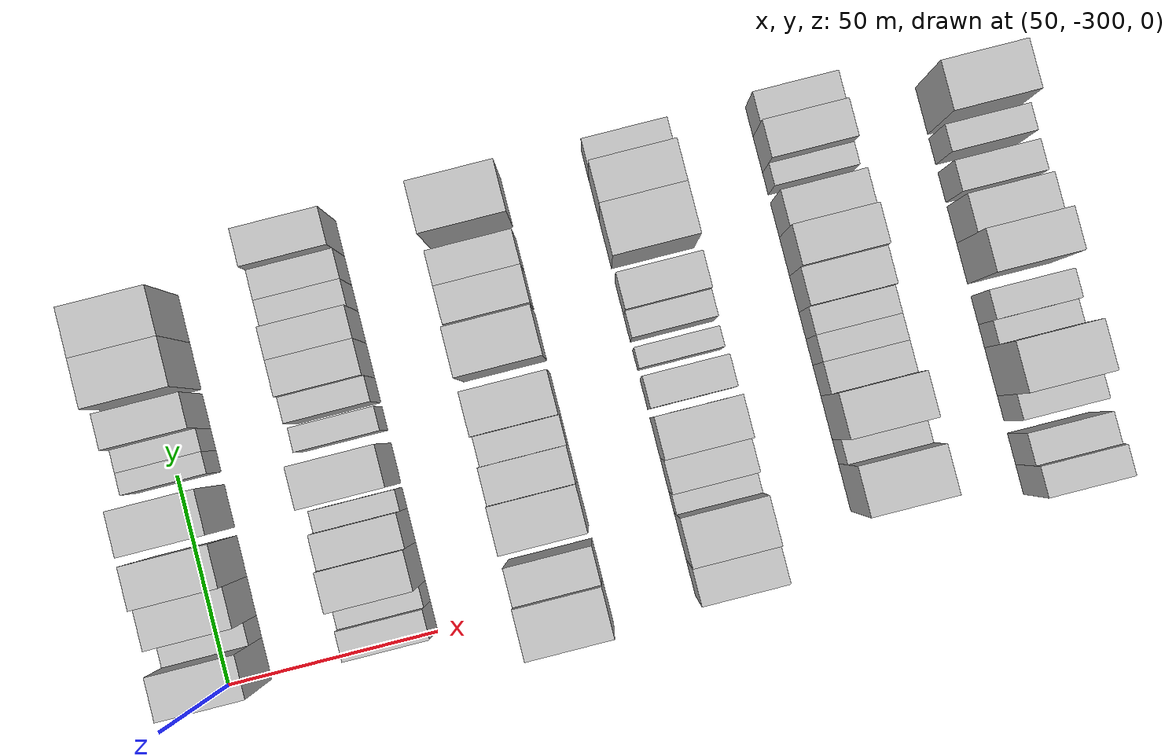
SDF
<sdf version="1.6">
 <world name="default">
  <model name="building_34">
   <static>1</static>
   <pose>50.0000 -296.2287 0 0.000000 0.000000 0.000000</pose>
   <link name="link">
    <pose>0 0 12.00 0 0 0</pose>
    <collision name="collision"><geometry><box><size>20.0000 9.9216 24.0000</size></box></geometry></collision>
    <visual name="visual">
     <cast_shadows>0</cast_shadows>
     <geometry><box><size>20.0000 9.9216 24.0000</size></box></geometry>
     <material>
      <script>
       <uri>model://HANNAS_wall/materials/scripts</uri>
       <uri>model://HANNAS_wall/materials/textures</uri>
       <name>vrc/HANNAS_wall</name>
      </script>
     </material>
    </visual>
   </link>
  </model>
  <model name="building_35">
   <static>1</static>
   <pose>50.0000 -288.6441 0 0.000000 0.000000 0.000000</pose>
   <link name="link">
    <pose>0 0 6.00 0 0 0</pose>
    <collision name="collision"><geometry><box><size>20.0000 5.2477 12.0000</size></box></geometry></collision>
    <visual name="visual">
     <cast_shadows>0</cast_shadows>
     <geometry><box><size>20.0000 5.2477 12.0000</size></box></geometry>
     <material>
      <script>
       <uri>model://HANNAS_wall/materials/scripts</uri>
       <uri>model://HANNAS_wall/materials/textures</uri>
       <name>vrc/HANNAS_wall</name>
      </script>
     </material>
    </visual>
   </link>
  </model>
  <model name="building_36">
   <static>1</static>
   <pose>50.0000 -281.3469 0 0.000000 0.000000 0.000000</pose>
   <link name="link">
    <pose>0 0 10.50 0 0 0</pose>
    <collision name="collision"><geometry><box><size>20.0000 9.3467 21.0000</size></box></geometry></collision>
    <visual name="visual">
     <cast_shadows>0</cast_shadows>
     <geometry><box><size>20.0000 9.3467 21.0000</size></box></geometry>
     <material>
      <script>
       <uri>model://HANNAS_wall/materials/scripts</uri>
       <uri>model://HANNAS_wall/materials/textures</uri>
       <name>vrc/HANNAS_wall</name>
      </script>
     </material>
    </visual>
   </link>
  </model>
  <model name="building_37">
   <static>1</static>
   <pose>50.0000 -271.7772 0 0.000000 0.000000 0.000000</pose>
   <link name="link">
    <pose>0 0 12.00 0 0 0</pose>
    <collision name="collision"><geometry><box><size>20.0000 9.7928 24.0000</size></box></geometry></collision>
    <visual name="visual">
     <cast_shadows>0</cast_shadows>
     <geometry><box><size>20.0000 9.7928 24.0000</size></box></geometry>
     <material>
      <script>
       <uri>model://HANNAS_wall/materials/scripts</uri>
       <uri>model://HANNAS_wall/materials/textures</uri>
       <name>vrc/HANNAS_wall</name>
      </script>
     </material>
    </visual>
   </link>
  </model>
  <model name="building_38">
   <static>1</static>
   <pose>50.0000 -259.7504 0 0.000000 0.000000 0.000000</pose>
   <link name="link">
    <pose>0 0 12.00 0 0 0</pose>
    <collision name="collision"><geometry><box><size>20.0000 10.2608 24.0000</size></box></geometry></collision>
    <visual name="visual">
     <cast_shadows>0</cast_shadows>
     <geometry><box><size>20.0000 10.2608 24.0000</size></box></geometry>
     <material>
      <script>
       <uri>model://HANNAS_wall/materials/scripts</uri>
       <uri>model://HANNAS_wall/materials/textures</uri>
       <name>vrc/HANNAS_wall</name>
      </script>
     </material>
    </visual>
   </link>
  </model>
  <model name="building_39">
   <static>1</static>
   <pose>50.0000 -249.0538 0 0.000000 0.000000 0.000000</pose>
   <link name="link">
    <pose>0 0 6.00 0 0 0</pose>
    <collision name="collision"><geometry><box><size>20.0000 5.1324 12.0000</size></box></geometry></collision>
    <visual name="visual">
     <cast_shadows>0</cast_shadows>
     <geometry><box><size>20.0000 5.1324 12.0000</size></box></geometry>
     <material>
      <script>
       <uri>model://HANNAS_wall/materials/scripts</uri>
       <uri>model://HANNAS_wall/materials/textures</uri>
       <name>vrc/HANNAS_wall</name>
      </script>
     </material>
    </visual>
   </link>
  </model>
  <model name="building_40">
   <static>1</static>
   <pose>50.0000 -243.7974 0 0.000000 0.000000 0.000000</pose>
   <link name="link">
    <pose>0 0 6.00 0 0 0</pose>
    <collision name="collision"><geometry><box><size>20.0000 5.3804 12.0000</size></box></geometry></collision>
    <visual name="visual">
     <cast_shadows>0</cast_shadows>
     <geometry><box><size>20.0000 5.3804 12.0000</size></box></geometry>
     <material>
      <script>
       <uri>model://HANNAS_wall/materials/scripts</uri>
       <uri>model://HANNAS_wall/materials/textures</uri>
       <name>vrc/HANNAS_wall</name>
      </script>
     </material>
    </visual>
   </link>
  </model>
  <model name="building_41">
   <static>1</static>
   <pose>50.0000 -236.9577 0 0.000000 0.000000 0.000000</pose>
   <link name="link">
    <pose>0 0 9.00 0 0 0</pose>
    <collision name="collision"><geometry><box><size>20.0000 8.2990 18.0000</size></box></geometry></collision>
    <visual name="visual">
     <cast_shadows>0</cast_shadows>
     <geometry><box><size>20.0000 8.2990 18.0000</size></box></geometry>
     <material>
      <script>
       <uri>model://HANNAS_wall/materials/scripts</uri>
       <uri>model://HANNAS_wall/materials/textures</uri>
       <name>vrc/HANNAS_wall</name>
      </script>
     </material>
    </visual>
   </link>
  </model>
  <model name="building_42">
   <static>1</static>
   <pose>50.0000 -226.1209 0 0.000000 0.000000 0.000000</pose>
   <link name="link">
    <pose>0 0 12.00 0 0 0</pose>
    <collision name="collision"><geometry><box><size>20.0000 11.3746 24.0000</size></box></geometry></collision>
    <visual name="visual">
     <cast_shadows>0</cast_shadows>
     <geometry><box><size>20.0000 11.3746 24.0000</size></box></geometry>
     <material>
      <script>
       <uri>model://HANNAS_wall/materials/scripts</uri>
       <uri>model://HANNAS_wall/materials/textures</uri>
       <name>vrc/HANNAS_wall</name>
      </script>
     </material>
    </visual>
   </link>
  </model>
  <model name="building_43">
   <static>1</static>
   <pose>50.0000 -214.7128 0 0.000000 0.000000 0.000000</pose>
   <link name="link">
    <pose>0 0 12.00 0 0 0</pose>
    <collision name="collision"><geometry><box><size>20.0000 11.4416 24.0000</size></box></geometry></collision>
    <visual name="visual">
     <cast_shadows>0</cast_shadows>
     <geometry><box><size>20.0000 11.4416 24.0000</size></box></geometry>
     <material>
      <script>
       <uri>model://HANNAS_wall/materials/scripts</uri>
       <uri>model://HANNAS_wall/materials/textures</uri>
       <name>vrc/HANNAS_wall</name>
      </script>
     </material>
    </visual>
   </link>
  </model>
  <model name="building_172">
   <static>1</static>
   <pose>90.0000 -296.2111 0 0.000000 0.000000 0.000000</pose>
   <link name="link">
    <pose>0 0 7.50 0 0 0</pose>
    <collision name="collision"><geometry><box><size>20.0000 6.9369 15.0000</size></box></geometry></collision>
    <visual name="visual">
     <cast_shadows>0</cast_shadows>
     <geometry><box><size>20.0000 6.9369 15.0000</size></box></geometry>
     <material>
      <script>
       <uri>model://HANNAS_wall/materials/scripts</uri>
       <uri>model://HANNAS_wall/materials/textures</uri>
       <name>vrc/HANNAS_wall</name>
      </script>
     </material>
    </visual>
   </link>
  </model>
  <model name="building_173">
   <static>1</static>
   <pose>90.0000 -290.3276 0 0.000000 0.000000 0.000000</pose>
   <link name="link">
    <pose>0 0 6.00 0 0 0</pose>
    <collision name="collision"><geometry><box><size>20.0000 4.8303 12.0000</size></box></geometry></collision>
    <visual name="visual">
     <cast_shadows>0</cast_shadows>
     <geometry><box><size>20.0000 4.8303 12.0000</size></box></geometry>
     <material>
      <script>
       <uri>model://HANNAS_wall/materials/scripts</uri>
       <uri>model://HANNAS_wall/materials/textures</uri>
       <name>vrc/HANNAS_wall</name>
      </script>
     </material>
    </visual>
   </link>
  </model>
  <model name="building_174">
   <static>1</static>
   <pose>90.0000 -283.2886 0 0.000000 0.000000 0.000000</pose>
   <link name="link">
    <pose>0 0 10.50 0 0 0</pose>
    <collision name="collision"><geometry><box><size>20.0000 9.2477 21.0000</size></box></geometry></collision>
    <visual name="visual">
     <cast_shadows>0</cast_shadows>
     <geometry><box><size>20.0000 9.2477 21.0000</size></box></geometry>
     <material>
      <script>
       <uri>model://HANNAS_wall/materials/scripts</uri>
       <uri>model://HANNAS_wall/materials/textures</uri>
       <name>vrc/HANNAS_wall</name>
      </script>
     </material>
    </visual>
   </link>
  </model>
  <model name="building_175">
   <static>1</static>
   <pose>90.0000 -274.5964 0 0.000000 0.000000 0.000000</pose>
   <link name="link">
    <pose>0 0 9.00 0 0 0</pose>
    <collision name="collision"><geometry><box><size>20.0000 8.1366 18.0000</size></box></geometry></collision>
    <visual name="visual">
     <cast_shadows>0</cast_shadows>
     <geometry><box><size>20.0000 8.1366 18.0000</size></box></geometry>
     <material>
      <script>
       <uri>model://HANNAS_wall/materials/scripts</uri>
       <uri>model://HANNAS_wall/materials/textures</uri>
       <name>vrc/HANNAS_wall</name>
      </script>
     </material>
    </visual>
   </link>
  </model>
  <model name="building_176">
   <static>1</static>
   <pose>90.0000 -268.0155 0 0.000000 0.000000 0.000000</pose>
   <link name="link">
    <pose>0 0 6.00 0 0 0</pose>
    <collision name="collision"><geometry><box><size>20.0000 5.0253 12.0000</size></box></geometry></collision>
    <visual name="visual">
     <cast_shadows>0</cast_shadows>
     <geometry><box><size>20.0000 5.0253 12.0000</size></box></geometry>
     <material>
      <script>
       <uri>model://HANNAS_wall/materials/scripts</uri>
       <uri>model://HANNAS_wall/materials/textures</uri>
       <name>vrc/HANNAS_wall</name>
      </script>
     </material>
    </visual>
   </link>
  </model>
  <model name="building_177">
   <static>1</static>
   <pose>90.0000 -259.6808 0 0.000000 0.000000 0.000000</pose>
   <link name="link">
    <pose>0 0 12.00 0 0 0</pose>
    <collision name="collision"><geometry><box><size>20.0000 9.6440 24.0000</size></box></geometry></collision>
    <visual name="visual">
     <cast_shadows>0</cast_shadows>
     <geometry><box><size>20.0000 9.6440 24.0000</size></box></geometry>
     <material>
      <script>
       <uri>model://HANNAS_wall/materials/scripts</uri>
       <uri>model://HANNAS_wall/materials/textures</uri>
       <name>vrc/HANNAS_wall</name>
      </script>
     </material>
    </visual>
   </link>
  </model>
  <model name="building_178">
   <static>1</static>
   <pose>90.0000 -249.0148 0 0.000000 0.000000 0.000000</pose>
   <link name="link">
    <pose>0 0 6.00 0 0 0</pose>
    <collision name="collision"><geometry><box><size>20.0000 5.6881 12.0000</size></box></geometry></collision>
    <visual name="visual">
     <cast_shadows>0</cast_shadows>
     <geometry><box><size>20.0000 5.6881 12.0000</size></box></geometry>
     <material>
      <script>
       <uri>model://HANNAS_wall/materials/scripts</uri>
       <uri>model://HANNAS_wall/materials/textures</uri>
       <name>vrc/HANNAS_wall</name>
      </script>
     </material>
    </visual>
   </link>
  </model>
  <model name="building_179">
   <static>1</static>
   <pose>90.0000 -242.1667 0 0.000000 0.000000 0.000000</pose>
   <link name="link">
    <pose>0 0 7.50 0 0 0</pose>
    <collision name="collision"><geometry><box><size>20.0000 6.0081 15.0000</size></box></geometry></collision>
    <visual name="visual">
     <cast_shadows>0</cast_shadows>
     <geometry><box><size>20.0000 6.0081 15.0000</size></box></geometry>
     <material>
      <script>
       <uri>model://HANNAS_wall/materials/scripts</uri>
       <uri>model://HANNAS_wall/materials/textures</uri>
       <name>vrc/HANNAS_wall</name>
      </script>
     </material>
    </visual>
   </link>
  </model>
  <model name="building_180">
   <static>1</static>
   <pose>90.0000 -234.9711 0 0.000000 0.000000 0.000000</pose>
   <link name="link">
    <pose>0 0 9.00 0 0 0</pose>
    <collision name="collision"><geometry><box><size>20.0000 8.3831 18.0000</size></box></geometry></collision>
    <visual name="visual">
     <cast_shadows>0</cast_shadows>
     <geometry><box><size>20.0000 8.3831 18.0000</size></box></geometry>
     <material>
      <script>
       <uri>model://HANNAS_wall/materials/scripts</uri>
       <uri>model://HANNAS_wall/materials/textures</uri>
       <name>vrc/HANNAS_wall</name>
      </script>
     </material>
    </visual>
   </link>
  </model>
  <model name="building_181">
   <static>1</static>
   <pose>90.0000 -226.9635 0 0.000000 0.000000 0.000000</pose>
   <link name="link">
    <pose>0 0 9.00 0 0 0</pose>
    <collision name="collision"><geometry><box><size>20.0000 7.6319 18.0000</size></box></geometry></collision>
    <visual name="visual">
     <cast_shadows>0</cast_shadows>
     <geometry><box><size>20.0000 7.6319 18.0000</size></box></geometry>
     <material>
      <script>
       <uri>model://HANNAS_wall/materials/scripts</uri>
       <uri>model://HANNAS_wall/materials/textures</uri>
       <name>vrc/HANNAS_wall</name>
      </script>
     </material>
    </visual>
   </link>
  </model>
  <model name="building_182">
   <static>1</static>
   <pose>90.0000 -219.9685 0 0.000000 0.000000 0.000000</pose>
   <link name="link">
    <pose>0 0 7.50 0 0 0</pose>
    <collision name="collision"><geometry><box><size>20.0000 6.3582 15.0000</size></box></geometry></collision>
    <visual name="visual">
     <cast_shadows>0</cast_shadows>
     <geometry><box><size>20.0000 6.3582 15.0000</size></box></geometry>
     <material>
      <script>
       <uri>model://HANNAS_wall/materials/scripts</uri>
       <uri>model://HANNAS_wall/materials/textures</uri>
       <name>vrc/HANNAS_wall</name>
      </script>
     </material>
    </visual>
   </link>
  </model>
  <model name="building_183">
   <static>1</static>
   <pose>90.0000 -213.2649 0 0.000000 0.000000 0.000000</pose>
   <link name="link">
    <pose>0 0 7.50 0 0 0</pose>
    <collision name="collision"><geometry><box><size>20.0000 7.0490 15.0000</size></box></geometry></collision>
    <visual name="visual">
     <cast_shadows>0</cast_shadows>
     <geometry><box><size>20.0000 7.0490 15.0000</size></box></geometry>
     <material>
      <script>
       <uri>model://HANNAS_wall/materials/scripts</uri>
       <uri>model://HANNAS_wall/materials/textures</uri>
       <name>vrc/HANNAS_wall</name>
      </script>
     </material>
    </visual>
   </link>
  </model>
  <model name="building_184">
   <static>1</static>
   <pose>90.0000 -205.4005 0 0.000000 0.000000 0.000000</pose>
   <link name="link">
    <pose>0 0 10.50 0 0 0</pose>
    <collision name="collision"><geometry><box><size>20.0000 8.6797 21.0000</size></box></geometry></collision>
    <visual name="visual">
     <cast_shadows>0</cast_shadows>
     <geometry><box><size>20.0000 8.6797 21.0000</size></box></geometry>
     <material>
      <script>
       <uri>model://HANNAS_wall/materials/scripts</uri>
       <uri>model://HANNAS_wall/materials/textures</uri>
       <name>vrc/HANNAS_wall</name>
      </script>
     </material>
    </visual>
   </link>
  </model>
  <model name="building_313">
   <static>1</static>
   <pose>130.0000 -302.5245 0 0.000000 0.000000 0.000000</pose>
   <link name="link">
    <pose>0 0 12.00 0 0 0</pose>
    <collision name="collision"><geometry><box><size>20.0000 11.6098 24.0000</size></box></geometry></collision>
    <visual name="visual">
     <cast_shadows>0</cast_shadows>
     <geometry><box><size>20.0000 11.6098 24.0000</size></box></geometry>
     <material>
      <script>
       <uri>model://HANNAS_wall/materials/scripts</uri>
       <uri>model://HANNAS_wall/materials/textures</uri>
       <name>vrc/HANNAS_wall</name>
      </script>
     </material>
    </visual>
   </link>
  </model>
  <model name="building_314">
   <static>1</static>
   <pose>130.0000 -292.3174 0 0.000000 0.000000 0.000000</pose>
   <link name="link">
    <pose>0 0 10.50 0 0 0</pose>
    <collision name="collision"><geometry><box><size>20.0000 8.8043 21.0000</size></box></geometry></collision>
    <visual name="visual">
     <cast_shadows>0</cast_shadows>
     <geometry><box><size>20.0000 8.8043 21.0000</size></box></geometry>
     <material>
      <script>
       <uri>model://HANNAS_wall/materials/scripts</uri>
       <uri>model://HANNAS_wall/materials/textures</uri>
       <name>vrc/HANNAS_wall</name>
      </script>
     </material>
    </visual>
   </link>
  </model>
  <model name="building_315">
   <static>1</static>
   <pose>130.0000 -279.4667 0 0.000000 0.000000 0.000000</pose>
   <link name="link">
    <pose>0 0 12.00 0 0 0</pose>
    <collision name="collision"><geometry><box><size>20.0000 10.8972 24.0000</size></box></geometry></collision>
    <visual name="visual">
     <cast_shadows>0</cast_shadows>
     <geometry><box><size>20.0000 10.8972 24.0000</size></box></geometry>
     <material>
      <script>
       <uri>model://HANNAS_wall/materials/scripts</uri>
       <uri>model://HANNAS_wall/materials/textures</uri>
       <name>vrc/HANNAS_wall</name>
      </script>
     </material>
    </visual>
   </link>
  </model>
  <model name="building_316">
   <static>1</static>
   <pose>130.0000 -269.6959 0 0.000000 0.000000 0.000000</pose>
   <link name="link">
    <pose>0 0 10.50 0 0 0</pose>
    <collision name="collision"><geometry><box><size>20.0000 8.6442 21.0000</size></box></geometry></collision>
    <visual name="visual">
     <cast_shadows>0</cast_shadows>
     <geometry><box><size>20.0000 8.6442 21.0000</size></box></geometry>
     <material>
      <script>
       <uri>model://HANNAS_wall/materials/scripts</uri>
       <uri>model://HANNAS_wall/materials/textures</uri>
       <name>vrc/HANNAS_wall</name>
      </script>
     </material>
    </visual>
   </link>
  </model>
  <model name="building_317">
   <static>1</static>
   <pose>130.0000 -261.9072 0 0.000000 0.000000 0.000000</pose>
   <link name="link">
    <pose>0 0 7.50 0 0 0</pose>
    <collision name="collision"><geometry><box><size>20.0000 6.9333 15.0000</size></box></geometry></collision>
    <visual name="visual">
     <cast_shadows>0</cast_shadows>
     <geometry><box><size>20.0000 6.9333 15.0000</size></box></geometry>
     <material>
      <script>
       <uri>model://HANNAS_wall/materials/scripts</uri>
       <uri>model://HANNAS_wall/materials/textures</uri>
       <name>vrc/HANNAS_wall</name>
      </script>
     </material>
    </visual>
   </link>
  </model>
  <model name="building_318">
   <static>1</static>
   <pose>130.0000 -253.3477 0 0.000000 0.000000 0.000000</pose>
   <link name="link">
    <pose>0 0 10.50 0 0 0</pose>
    <collision name="collision"><geometry><box><size>20.0000 10.1857 21.0000</size></box></geometry></collision>
    <visual name="visual">
     <cast_shadows>0</cast_shadows>
     <geometry><box><size>20.0000 10.1857 21.0000</size></box></geometry>
     <material>
      <script>
       <uri>model://HANNAS_wall/materials/scripts</uri>
       <uri>model://HANNAS_wall/materials/textures</uri>
       <name>vrc/HANNAS_wall</name>
      </script>
     </material>
    </visual>
   </link>
  </model>
  <model name="building_319">
   <static>1</static>
   <pose>130.0000 -239.5448 0 0.000000 0.000000 0.000000</pose>
   <link name="link">
    <pose>0 0 12.00 0 0 0</pose>
    <collision name="collision"><geometry><box><size>20.0000 11.4201 24.0000</size></box></geometry></collision>
    <visual name="visual">
     <cast_shadows>0</cast_shadows>
     <geometry><box><size>20.0000 11.4201 24.0000</size></box></geometry>
     <material>
      <script>
       <uri>model://HANNAS_wall/materials/scripts</uri>
       <uri>model://HANNAS_wall/materials/textures</uri>
       <name>vrc/HANNAS_wall</name>
      </script>
     </material>
    </visual>
   </link>
  </model>
  <model name="building_320">
   <static>1</static>
   <pose>130.0000 -228.4159 0 0.000000 0.000000 0.000000</pose>
   <link name="link">
    <pose>0 0 9.00 0 0 0</pose>
    <collision name="collision"><geometry><box><size>20.0000 8.8376 18.0000</size></box></geometry></collision>
    <visual name="visual">
     <cast_shadows>0</cast_shadows>
     <geometry><box><size>20.0000 8.8376 18.0000</size></box></geometry>
     <material>
      <script>
       <uri>model://HANNAS_wall/materials/scripts</uri>
       <uri>model://HANNAS_wall/materials/textures</uri>
       <name>vrc/HANNAS_wall</name>
      </script>
     </material>
    </visual>
   </link>
  </model>
  <model name="building_321">
   <static>1</static>
   <pose>130.0000 -219.9439 0 0.000000 0.000000 0.000000</pose>
   <link name="link">
    <pose>0 0 9.00 0 0 0</pose>
    <collision name="collision"><geometry><box><size>20.0000 8.1064 18.0000</size></box></geometry></collision>
    <visual name="visual">
     <cast_shadows>0</cast_shadows>
     <geometry><box><size>20.0000 8.1064 18.0000</size></box></geometry>
     <material>
      <script>
       <uri>model://HANNAS_wall/materials/scripts</uri>
       <uri>model://HANNAS_wall/materials/textures</uri>
       <name>vrc/HANNAS_wall</name>
      </script>
     </material>
    </visual>
   </link>
  </model>
  <model name="building_322">
   <static>1</static>
   <pose>130.0000 -206.9504 0 0.000000 0.000000 0.000000</pose>
   <link name="link">
    <pose>0 0 12.00 0 0 0</pose>
    <collision name="collision"><geometry><box><size>20.0000 11.8806 24.0000</size></box></geometry></collision>
    <visual name="visual">
     <cast_shadows>0</cast_shadows>
     <geometry><box><size>20.0000 11.8806 24.0000</size></box></geometry>
     <material>
      <script>
       <uri>model://HANNAS_wall/materials/scripts</uri>
       <uri>model://HANNAS_wall/materials/textures</uri>
       <name>vrc/HANNAS_wall</name>
      </script>
     </material>
    </visual>
   </link>
  </model>
  <model name="building_451">
   <static>1</static>
   <pose>170.0000 -302.3357 0 0.000000 0.000000 0.000000</pose>
   <link name="link">
    <pose>0 0 10.50 0 0 0</pose>
    <collision name="collision"><geometry><box><size>20.0000 8.7654 21.0000</size></box></geometry></collision>
    <visual name="visual">
     <cast_shadows>0</cast_shadows>
     <geometry><box><size>20.0000 8.7654 21.0000</size></box></geometry>
     <material>
      <script>
       <uri>model://HANNAS_wall/materials/scripts</uri>
       <uri>model://HANNAS_wall/materials/textures</uri>
       <name>vrc/HANNAS_wall</name>
      </script>
     </material>
    </visual>
   </link>
  </model>
  <model name="building_452">
   <static>1</static>
   <pose>170.0000 -292.3222 0 0.000000 0.000000 0.000000</pose>
   <link name="link">
    <pose>0 0 12.00 0 0 0</pose>
    <collision name="collision"><geometry><box><size>20.0000 11.2615 24.0000</size></box></geometry></collision>
    <visual name="visual">
     <cast_shadows>0</cast_shadows>
     <geometry><box><size>20.0000 11.2615 24.0000</size></box></geometry>
     <material>
      <script>
       <uri>model://HANNAS_wall/materials/scripts</uri>
       <uri>model://HANNAS_wall/materials/textures</uri>
       <name>vrc/HANNAS_wall</name>
      </script>
     </material>
    </visual>
   </link>
  </model>
  <model name="building_453">
   <static>1</static>
   <pose>170.0000 -284.2298 0 0.000000 0.000000 0.000000</pose>
   <link name="link">
    <pose>0 0 6.00 0 0 0</pose>
    <collision name="collision"><geometry><box><size>20.0000 4.9233 12.0000</size></box></geometry></collision>
    <visual name="visual">
     <cast_shadows>0</cast_shadows>
     <geometry><box><size>20.0000 4.9233 12.0000</size></box></geometry>
     <material>
      <script>
       <uri>model://HANNAS_wall/materials/scripts</uri>
       <uri>model://HANNAS_wall/materials/textures</uri>
       <name>vrc/HANNAS_wall</name>
      </script>
     </material>
    </visual>
   </link>
  </model>
  <model name="building_454">
   <static>1</static>
   <pose>170.0000 -277.8054 0 0.000000 0.000000 0.000000</pose>
   <link name="link">
    <pose>0 0 9.00 0 0 0</pose>
    <collision name="collision"><geometry><box><size>20.0000 7.9255 18.0000</size></box></geometry></collision>
    <visual name="visual">
     <cast_shadows>0</cast_shadows>
     <geometry><box><size>20.0000 7.9255 18.0000</size></box></geometry>
     <material>
      <script>
       <uri>model://HANNAS_wall/materials/scripts</uri>
       <uri>model://HANNAS_wall/materials/textures</uri>
       <name>vrc/HANNAS_wall</name>
      </script>
     </material>
    </visual>
   </link>
  </model>
  <model name="building_455">
   <static>1</static>
   <pose>170.0000 -268.9957 0 0.000000 0.000000 0.000000</pose>
   <link name="link">
    <pose>0 0 12.00 0 0 0</pose>
    <collision name="collision"><geometry><box><size>20.0000 9.6938 24.0000</size></box></geometry></collision>
    <visual name="visual">
     <cast_shadows>0</cast_shadows>
     <geometry><box><size>20.0000 9.6938 24.0000</size></box></geometry>
     <material>
      <script>
       <uri>model://HANNAS_wall/materials/scripts</uri>
       <uri>model://HANNAS_wall/materials/textures</uri>
       <name>vrc/HANNAS_wall</name>
      </script>
     </material>
    </visual>
   </link>
  </model>
  <model name="building_456">
   <static>1</static>
   <pose>170.0000 -258.4519 0 0.000000 0.000000 0.000000</pose>
   <link name="link">
    <pose>0 0 9.00 0 0 0</pose>
    <collision name="collision"><geometry><box><size>20.0000 7.3940 18.0000</size></box></geometry></collision>
    <visual name="visual">
     <cast_shadows>0</cast_shadows>
     <geometry><box><size>20.0000 7.3940 18.0000</size></box></geometry>
     <material>
      <script>
       <uri>model://HANNAS_wall/materials/scripts</uri>
       <uri>model://HANNAS_wall/materials/textures</uri>
       <name>vrc/HANNAS_wall</name>
      </script>
     </material>
    </visual>
   </link>
  </model>
  <model name="building_457">
   <static>1</static>
   <pose>170.0000 -250.3079 0 0.000000 0.000000 0.000000</pose>
   <link name="link">
    <pose>0 0 6.00 0 0 0</pose>
    <collision name="collision"><geometry><box><size>20.0000 4.8940 12.0000</size></box></geometry></collision>
    <visual name="visual">
     <cast_shadows>0</cast_shadows>
     <geometry><box><size>20.0000 4.8940 12.0000</size></box></geometry>
     <material>
      <script>
       <uri>model://HANNAS_wall/materials/scripts</uri>
       <uri>model://HANNAS_wall/materials/textures</uri>
       <name>vrc/HANNAS_wall</name>
      </script>
     </material>
    </visual>
   </link>
  </model>
  <model name="building_458">
   <static>1</static>
   <pose>170.0000 -242.7268 0 0.000000 0.000000 0.000000</pose>
   <link name="link">
    <pose>0 0 7.50 0 0 0</pose>
    <collision name="collision"><geometry><box><size>20.0000 6.2682 15.0000</size></box></geometry></collision>
    <visual name="visual">
     <cast_shadows>0</cast_shadows>
     <geometry><box><size>20.0000 6.2682 15.0000</size></box></geometry>
     <material>
      <script>
       <uri>model://HANNAS_wall/materials/scripts</uri>
       <uri>model://HANNAS_wall/materials/textures</uri>
       <name>vrc/HANNAS_wall</name>
      </script>
     </material>
    </visual>
   </link>
  </model>
  <model name="building_459">
   <static>1</static>
   <pose>170.0000 -235.3195 0 0.000000 0.000000 0.000000</pose>
   <link name="link">
    <pose>0 0 9.00 0 0 0</pose>
    <collision name="collision"><geometry><box><size>20.0000 8.5463 18.0000</size></box></geometry></collision>
    <visual name="visual">
     <cast_shadows>0</cast_shadows>
     <geometry><box><size>20.0000 8.5463 18.0000</size></box></geometry>
     <material>
      <script>
       <uri>model://HANNAS_wall/materials/scripts</uri>
       <uri>model://HANNAS_wall/materials/textures</uri>
       <name>vrc/HANNAS_wall</name>
      </script>
     </material>
    </visual>
   </link>
  </model>
  <model name="building_460">
   <static>1</static>
   <pose>170.0000 -222.0948 0 0.000000 0.000000 0.000000</pose>
   <link name="link">
    <pose>0 0 12.00 0 0 0</pose>
    <collision name="collision"><geometry><box><size>20.0000 11.9031 24.0000</size></box></geometry></collision>
    <visual name="visual">
     <cast_shadows>0</cast_shadows>
     <geometry><box><size>20.0000 11.9031 24.0000</size></box></geometry>
     <material>
      <script>
       <uri>model://HANNAS_wall/materials/scripts</uri>
       <uri>model://HANNAS_wall/materials/textures</uri>
       <name>vrc/HANNAS_wall</name>
      </script>
     </material>
    </visual>
   </link>
  </model>
  <model name="building_461">
   <static>1</static>
   <pose>170.0000 -211.3213 0 0.000000 0.000000 0.000000</pose>
   <link name="link">
    <pose>0 0 12.00 0 0 0</pose>
    <collision name="collision"><geometry><box><size>20.0000 9.6440 24.0000</size></box></geometry></collision>
    <visual name="visual">
     <cast_shadows>0</cast_shadows>
     <geometry><box><size>20.0000 9.6440 24.0000</size></box></geometry>
     <material>
      <script>
       <uri>model://HANNAS_wall/materials/scripts</uri>
       <uri>model://HANNAS_wall/materials/textures</uri>
       <name>vrc/HANNAS_wall</name>
      </script>
     </material>
    </visual>
   </link>
  </model>
  <model name="building_462">
   <static>1</static>
   <pose>170.0000 -203.0589 0 0.000000 0.000000 0.000000</pose>
   <link name="link">
    <pose>0 0 7.50 0 0 0</pose>
    <collision name="collision"><geometry><box><size>20.0000 6.8807 15.0000</size></box></geometry></collision>
    <visual name="visual">
     <cast_shadows>0</cast_shadows>
     <geometry><box><size>20.0000 6.8807 15.0000</size></box></geometry>
     <material>
      <script>
       <uri>model://HANNAS_wall/materials/scripts</uri>
       <uri>model://HANNAS_wall/materials/textures</uri>
       <name>vrc/HANNAS_wall</name>
      </script>
     </material>
    </visual>
   </link>
  </model>
  <model name="building_579">
   <static>1</static>
   <pose>210.0000 -291.0762 0 0.000000 0.000000 0.000000</pose>
   <link name="link">
    <pose>0 0 12.00 0 0 0</pose>
    <collision name="collision"><geometry><box><size>20.0000 11.4701 24.0000</size></box></geometry></collision>
    <visual name="visual">
     <cast_shadows>0</cast_shadows>
     <geometry><box><size>20.0000 11.4701 24.0000</size></box></geometry>
     <material>
      <script>
       <uri>model://HANNAS_wall/materials/scripts</uri>
       <uri>model://HANNAS_wall/materials/textures</uri>
       <name>vrc/HANNAS_wall</name>
      </script>
     </material>
    </visual>
   </link>
  </model>
  <model name="building_580">
   <static>1</static>
   <pose>210.0000 -282.4041 0 0.000000 0.000000 0.000000</pose>
   <link name="link">
    <pose>0 0 6.00 0 0 0</pose>
    <collision name="collision"><geometry><box><size>20.0000 5.8741 12.0000</size></box></geometry></collision>
    <visual name="visual">
     <cast_shadows>0</cast_shadows>
     <geometry><box><size>20.0000 5.8741 12.0000</size></box></geometry>
     <material>
      <script>
       <uri>model://HANNAS_wall/materials/scripts</uri>
       <uri>model://HANNAS_wall/materials/textures</uri>
       <name>vrc/HANNAS_wall</name>
      </script>
     </material>
    </visual>
   </link>
  </model>
  <model name="building_581">
   <static>1</static>
   <pose>210.0000 -274.2478 0 0.000000 0.000000 0.000000</pose>
   <link name="link">
    <pose>0 0 12.00 0 0 0</pose>
    <collision name="collision"><geometry><box><size>20.0000 10.4386 24.0000</size></box></geometry></collision>
    <visual name="visual">
     <cast_shadows>0</cast_shadows>
     <geometry><box><size>20.0000 10.4386 24.0000</size></box></geometry>
     <material>
      <script>
       <uri>model://HANNAS_wall/materials/scripts</uri>
       <uri>model://HANNAS_wall/materials/textures</uri>
       <name>vrc/HANNAS_wall</name>
      </script>
     </material>
    </visual>
   </link>
  </model>
  <model name="building_582">
   <static>1</static>
   <pose>210.0000 -265.3279 0 0.000000 0.000000 0.000000</pose>
   <link name="link">
    <pose>0 0 7.50 0 0 0</pose>
    <collision name="collision"><geometry><box><size>20.0000 7.4011 15.0000</size></box></geometry></collision>
    <visual name="visual">
     <cast_shadows>0</cast_shadows>
     <geometry><box><size>20.0000 7.4011 15.0000</size></box></geometry>
     <material>
      <script>
       <uri>model://HANNAS_wall/materials/scripts</uri>
       <uri>model://HANNAS_wall/materials/textures</uri>
       <name>vrc/HANNAS_wall</name>
      </script>
     </material>
    </visual>
   </link>
  </model>
  <model name="building_583">
   <static>1</static>
   <pose>210.0000 -258.5129 0 0.000000 0.000000 0.000000</pose>
   <link name="link">
    <pose>0 0 7.50 0 0 0</pose>
    <collision name="collision"><geometry><box><size>20.0000 6.2289 15.0000</size></box></geometry></collision>
    <visual name="visual">
     <cast_shadows>0</cast_shadows>
     <geometry><box><size>20.0000 6.2289 15.0000</size></box></geometry>
     <material>
      <script>
       <uri>model://HANNAS_wall/materials/scripts</uri>
       <uri>model://HANNAS_wall/materials/textures</uri>
       <name>vrc/HANNAS_wall</name>
      </script>
     </material>
    </visual>
   </link>
  </model>
  <model name="building_584">
   <static>1</static>
   <pose>210.0000 -252.1480 0 0.000000 0.000000 0.000000</pose>
   <link name="link">
    <pose>0 0 7.50 0 0 0</pose>
    <collision name="collision"><geometry><box><size>20.0000 6.5010 15.0000</size></box></geometry></collision>
    <visual name="visual">
     <cast_shadows>0</cast_shadows>
     <geometry><box><size>20.0000 6.5010 15.0000</size></box></geometry>
     <material>
      <script>
       <uri>model://HANNAS_wall/materials/scripts</uri>
       <uri>model://HANNAS_wall/materials/textures</uri>
       <name>vrc/HANNAS_wall</name>
      </script>
     </material>
    </visual>
   </link>
  </model>
  <model name="building_585">
   <static>1</static>
   <pose>210.0000 -244.4890 0 0.000000 0.000000 0.000000</pose>
   <link name="link">
    <pose>0 0 9.00 0 0 0</pose>
    <collision name="collision"><geometry><box><size>20.0000 8.8171 18.0000</size></box></geometry></collision>
    <visual name="visual">
     <cast_shadows>0</cast_shadows>
     <geometry><box><size>20.0000 8.8171 18.0000</size></box></geometry>
     <material>
      <script>
       <uri>model://HANNAS_wall/materials/scripts</uri>
       <uri>model://HANNAS_wall/materials/textures</uri>
       <name>vrc/HANNAS_wall</name>
      </script>
     </material>
    </visual>
   </link>
  </model>
  <model name="building_586">
   <static>1</static>
   <pose>210.0000 -235.3846 0 0.000000 0.000000 0.000000</pose>
   <link name="link">
    <pose>0 0 10.50 0 0 0</pose>
    <collision name="collision"><geometry><box><size>20.0000 9.3918 21.0000</size></box></geometry></collision>
    <visual name="visual">
     <cast_shadows>0</cast_shadows>
     <geometry><box><size>20.0000 9.3918 21.0000</size></box></geometry>
     <material>
      <script>
       <uri>model://HANNAS_wall/materials/scripts</uri>
       <uri>model://HANNAS_wall/materials/textures</uri>
       <name>vrc/HANNAS_wall</name>
      </script>
     </material>
    </visual>
   </link>
  </model>
  <model name="building_587">
   <static>1</static>
   <pose>210.0000 -226.4770 0 0.000000 0.000000 0.000000</pose>
   <link name="link">
    <pose>0 0 9.00 0 0 0</pose>
    <collision name="collision"><geometry><box><size>20.0000 8.4232 18.0000</size></box></geometry></collision>
    <visual name="visual">
     <cast_shadows>0</cast_shadows>
     <geometry><box><size>20.0000 8.4232 18.0000</size></box></geometry>
     <material>
      <script>
       <uri>model://HANNAS_wall/materials/scripts</uri>
       <uri>model://HANNAS_wall/materials/textures</uri>
       <name>vrc/HANNAS_wall</name>
      </script>
     </material>
    </visual>
   </link>
  </model>
  <model name="building_588">
   <static>1</static>
   <pose>210.0000 -217.5975 0 0.000000 0.000000 0.000000</pose>
   <link name="link">
    <pose>0 0 6.00 0 0 0</pose>
    <collision name="collision"><geometry><box><size>20.0000 5.3358 12.0000</size></box></geometry></collision>
    <visual name="visual">
     <cast_shadows>0</cast_shadows>
     <geometry><box><size>20.0000 5.3358 12.0000</size></box></geometry>
     <material>
      <script>
       <uri>model://HANNAS_wall/materials/scripts</uri>
       <uri>model://HANNAS_wall/materials/textures</uri>
       <name>vrc/HANNAS_wall</name>
      </script>
     </material>
    </visual>
   </link>
  </model>
  <model name="building_589">
   <static>1</static>
   <pose>210.0000 -210.5162 0 0.000000 0.000000 0.000000</pose>
   <link name="link">
    <pose>0 0 9.00 0 0 0</pose>
    <collision name="collision"><geometry><box><size>20.0000 8.8270 18.0000</size></box></geometry></collision>
    <visual name="visual">
     <cast_shadows>0</cast_shadows>
     <geometry><box><size>20.0000 8.8270 18.0000</size></box></geometry>
     <material>
      <script>
       <uri>model://HANNAS_wall/materials/scripts</uri>
       <uri>model://HANNAS_wall/materials/textures</uri>
       <name>vrc/HANNAS_wall</name>
      </script>
     </material>
    </visual>
   </link>
  </model>
  <model name="building_590">
   <static>1</static>
   <pose>210.0000 -202.4877 0 0.000000 0.000000 0.000000</pose>
   <link name="link">
    <pose>0 0 7.50 0 0 0</pose>
    <collision name="collision"><geometry><box><size>20.0000 7.2301 15.0000</size></box></geometry></collision>
    <visual name="visual">
     <cast_shadows>0</cast_shadows>
     <geometry><box><size>20.0000 7.2301 15.0000</size></box></geometry>
     <material>
      <script>
       <uri>model://HANNAS_wall/materials/scripts</uri>
       <uri>model://HANNAS_wall/materials/textures</uri>
       <name>vrc/HANNAS_wall</name>
      </script>
     </material>
    </visual>
   </link>
  </model>
  <model name="building_717">
   <static>1</static>
   <pose>250.0000 -299.3405 0 0.000000 0.000000 0.000000</pose>
   <link name="link">
    <pose>0 0 9.00 0 0 0</pose>
    <collision name="collision"><geometry><box><size>20.0000 7.2005 18.0000</size></box></geometry></collision>
    <visual name="visual">
     <cast_shadows>0</cast_shadows>
     <geometry><box><size>20.0000 7.2005 18.0000</size></box></geometry>
     <material>
      <script>
       <uri>model://HANNAS_wall/materials/scripts</uri>
       <uri>model://HANNAS_wall/materials/textures</uri>
       <name>vrc/HANNAS_wall</name>
      </script>
     </material>
    </visual>
   </link>
  </model>
  <model name="building_718">
   <static>1</static>
   <pose>250.0000 -291.9921 0 0.000000 0.000000 0.000000</pose>
   <link name="link">
    <pose>0 0 7.50 0 0 0</pose>
    <collision name="collision"><geometry><box><size>20.0000 7.4961 15.0000</size></box></geometry></collision>
    <visual name="visual">
     <cast_shadows>0</cast_shadows>
     <geometry><box><size>20.0000 7.4961 15.0000</size></box></geometry>
     <material>
      <script>
       <uri>model://HANNAS_wall/materials/scripts</uri>
       <uri>model://HANNAS_wall/materials/textures</uri>
       <name>vrc/HANNAS_wall</name>
      </script>
     </material>
    </visual>
   </link>
  </model>
  <model name="building_719">
   <static>1</static>
   <pose>250.0000 -282.2304 0 0.000000 0.000000 0.000000</pose>
   <link name="link">
    <pose>0 0 7.50 0 0 0</pose>
    <collision name="collision"><geometry><box><size>20.0000 6.0273 15.0000</size></box></geometry></collision>
    <visual name="visual">
     <cast_shadows>0</cast_shadows>
     <geometry><box><size>20.0000 6.0273 15.0000</size></box></geometry>
     <material>
      <script>
       <uri>model://HANNAS_wall/materials/scripts</uri>
       <uri>model://HANNAS_wall/materials/textures</uri>
       <name>vrc/HANNAS_wall</name>
      </script>
     </material>
    </visual>
   </link>
  </model>
  <model name="building_720">
   <static>1</static>
   <pose>250.0000 -273.4031 0 0.000000 0.000000 0.000000</pose>
   <link name="link">
    <pose>0 0 12.00 0 0 0</pose>
    <collision name="collision"><geometry><box><size>20.0000 11.6273 24.0000</size></box></geometry></collision>
    <visual name="visual">
     <cast_shadows>0</cast_shadows>
     <geometry><box><size>20.0000 11.6273 24.0000</size></box></geometry>
     <material>
      <script>
       <uri>model://HANNAS_wall/materials/scripts</uri>
       <uri>model://HANNAS_wall/materials/textures</uri>
       <name>vrc/HANNAS_wall</name>
      </script>
     </material>
    </visual>
   </link>
  </model>
  <model name="building_721">
   <static>1</static>
   <pose>250.0000 -264.8031 0 0.000000 0.000000 0.000000</pose>
   <link name="link">
    <pose>0 0 6.00 0 0 0</pose>
    <collision name="collision"><geometry><box><size>20.0000 5.5727 12.0000</size></box></geometry></collision>
    <visual name="visual">
     <cast_shadows>0</cast_shadows>
     <geometry><box><size>20.0000 5.5727 12.0000</size></box></geometry>
     <material>
      <script>
       <uri>model://HANNAS_wall/materials/scripts</uri>
       <uri>model://HANNAS_wall/materials/textures</uri>
       <name>vrc/HANNAS_wall</name>
      </script>
     </material>
    </visual>
   </link>
  </model>
  <model name="building_722">
   <static>1</static>
   <pose>250.0000 -258.5931 0 0.000000 0.000000 0.000000</pose>
   <link name="link">
    <pose>0 0 7.50 0 0 0</pose>
    <collision name="collision"><geometry><box><size>20.0000 6.8474 15.0000</size></box></geometry></collision>
    <visual name="visual">
     <cast_shadows>0</cast_shadows>
     <geometry><box><size>20.0000 6.8474 15.0000</size></box></geometry>
     <material>
      <script>
       <uri>model://HANNAS_wall/materials/scripts</uri>
       <uri>model://HANNAS_wall/materials/textures</uri>
       <name>vrc/HANNAS_wall</name>
      </script>
     </material>
    </visual>
   </link>
  </model>
  <model name="building_723">
   <static>1</static>
   <pose>250.0000 -247.2334 0 0.000000 0.000000 0.000000</pose>
   <link name="link">
    <pose>0 0 12.00 0 0 0</pose>
    <collision name="collision"><geometry><box><size>20.0000 9.8719 24.0000</size></box></geometry></collision>
    <visual name="visual">
     <cast_shadows>0</cast_shadows>
     <geometry><box><size>20.0000 9.8719 24.0000</size></box></geometry>
     <material>
      <script>
       <uri>model://HANNAS_wall/materials/scripts</uri>
       <uri>model://HANNAS_wall/materials/textures</uri>
       <name>vrc/HANNAS_wall</name>
      </script>
     </material>
    </visual>
   </link>
  </model>
  <model name="building_724">
   <static>1</static>
   <pose>250.0000 -237.8223 0 0.000000 0.000000 0.000000</pose>
   <link name="link">
    <pose>0 0 9.00 0 0 0</pose>
    <collision name="collision"><geometry><box><size>20.0000 8.9504 18.0000</size></box></geometry></collision>
    <visual name="visual">
     <cast_shadows>0</cast_shadows>
     <geometry><box><size>20.0000 8.9504 18.0000</size></box></geometry>
     <material>
      <script>
       <uri>model://HANNAS_wall/materials/scripts</uri>
       <uri>model://HANNAS_wall/materials/textures</uri>
       <name>vrc/HANNAS_wall</name>
      </script>
     </material>
    </visual>
   </link>
  </model>
  <model name="building_725">
   <static>1</static>
   <pose>250.0000 -228.7200 0 0.000000 0.000000 0.000000</pose>
   <link name="link">
    <pose>0 0 7.50 0 0 0</pose>
    <collision name="collision"><geometry><box><size>20.0000 7.2542 15.0000</size></box></geometry></collision>
    <visual name="visual">
     <cast_shadows>0</cast_shadows>
     <geometry><box><size>20.0000 7.2542 15.0000</size></box></geometry>
     <material>
      <script>
       <uri>model://HANNAS_wall/materials/scripts</uri>
       <uri>model://HANNAS_wall/materials/textures</uri>
       <name>vrc/HANNAS_wall</name>
      </script>
     </material>
    </visual>
   </link>
  </model>
  <model name="building_726">
   <static>1</static>
   <pose>250.0000 -219.8981 0 0.000000 0.000000 0.000000</pose>
   <link name="link">
    <pose>0 0 7.50 0 0 0</pose>
    <collision name="collision"><geometry><box><size>20.0000 6.3898 15.0000</size></box></geometry></collision>
    <visual name="visual">
     <cast_shadows>0</cast_shadows>
     <geometry><box><size>20.0000 6.3898 15.0000</size></box></geometry>
     <material>
      <script>
       <uri>model://HANNAS_wall/materials/scripts</uri>
       <uri>model://HANNAS_wall/materials/textures</uri>
       <name>vrc/HANNAS_wall</name>
      </script>
     </material>
    </visual>
   </link>
  </model>
  <model name="building_727">
   <static>1</static>
   <pose>250.0000 -209.9752 0 0.000000 0.000000 0.000000</pose>
   <link name="link">
    <pose>0 0 12.00 0 0 0</pose>
    <collision name="collision"><geometry><box><size>20.0000 11.4561 24.0000</size></box></geometry></collision>
    <visual name="visual">
     <cast_shadows>0</cast_shadows>
     <geometry><box><size>20.0000 11.4561 24.0000</size></box></geometry>
     <material>
      <script>
       <uri>model://HANNAS_wall/materials/scripts</uri>
       <uri>model://HANNAS_wall/materials/textures</uri>
       <name>vrc/HANNAS_wall</name>
      </script>
     </material>
    </visual>
   </link>
  </model>
 </world>
</sdf>
